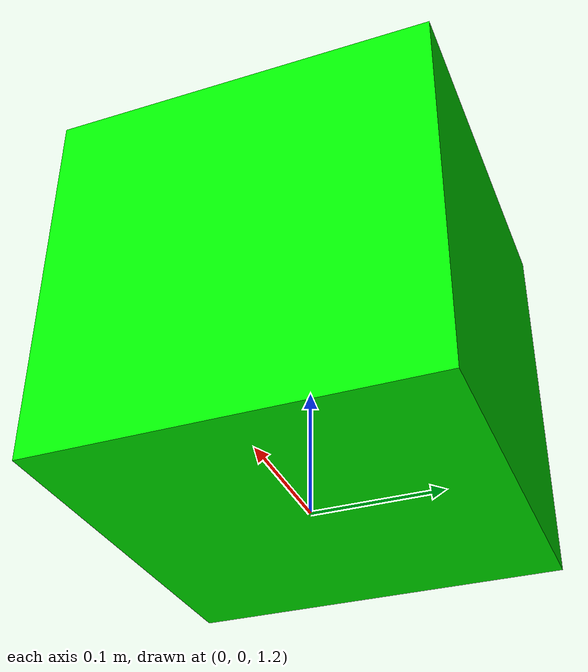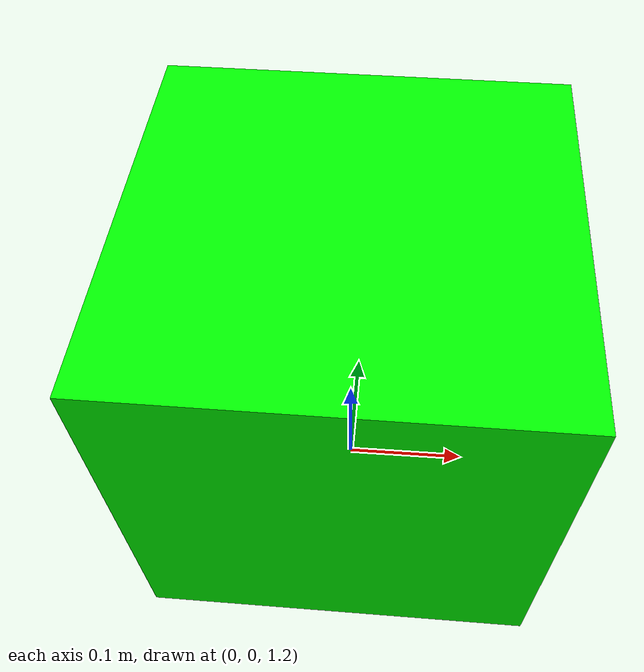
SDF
<?xml version='1.0'?>
<sdf version='1.6'>
    <model name='my_cube'>
    	<pose>0 0 1.345 0 0 0</pose>
        <static>true</static>
        <link name='cube'>
            <visual name='visual'>
                <geometry>
                    <box>
                        <size>0.3 0.3 0.3</size>
                    </box>
                </geometry>
                <material>
                    <ambient>1 0 0 1</ambient>
                    <diffuse>0 1 0 1</diffuse>
                    <specular>0 0 1 1</specular>
                </material>
            </visual>
            <collision name='collision'>
                <geometry>
                    <box>
                        <size>0.3 0.3 0.3</size>
                    </box>
                </geometry>
            </collision>
        </link>
    </model>
</sdf>
